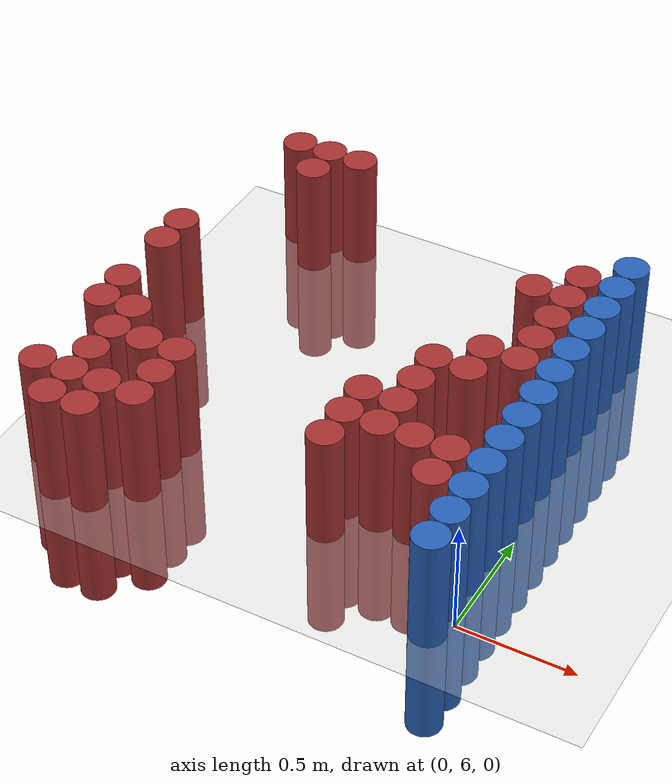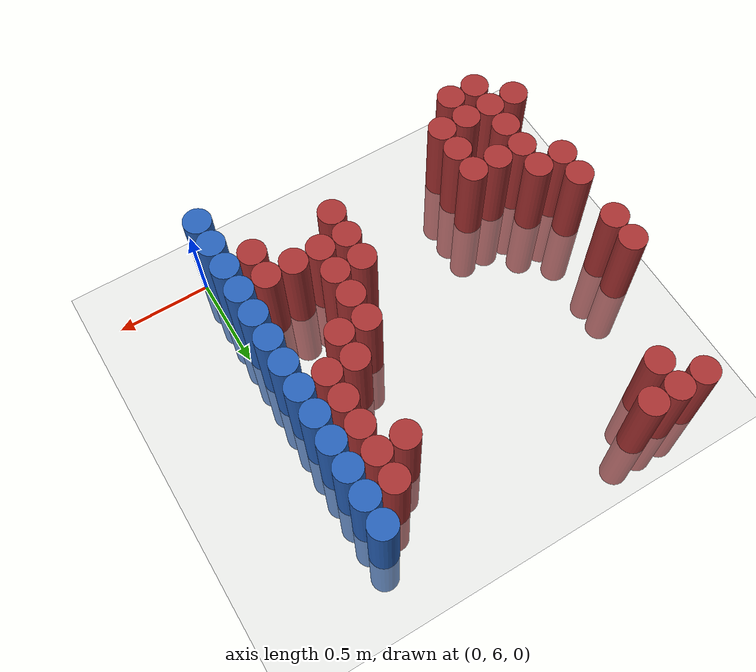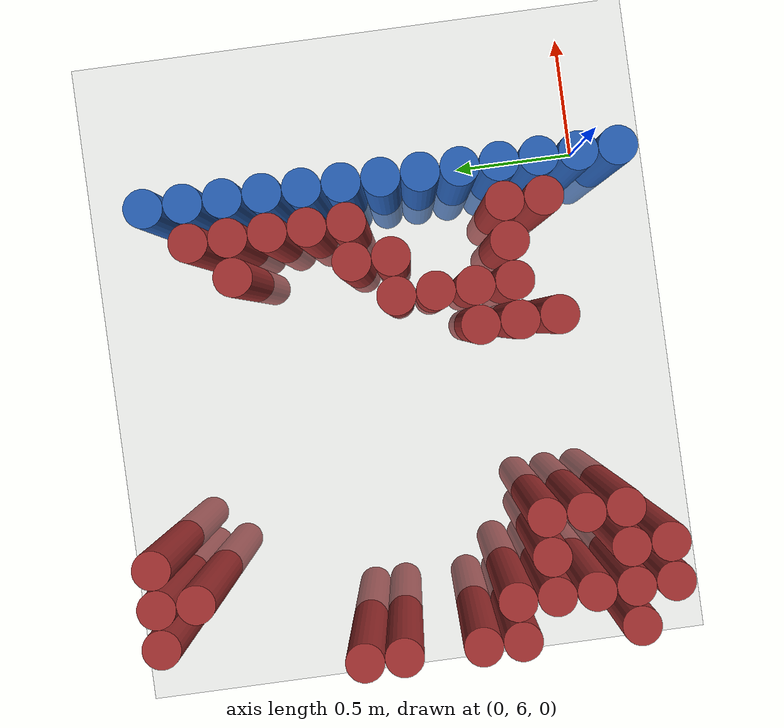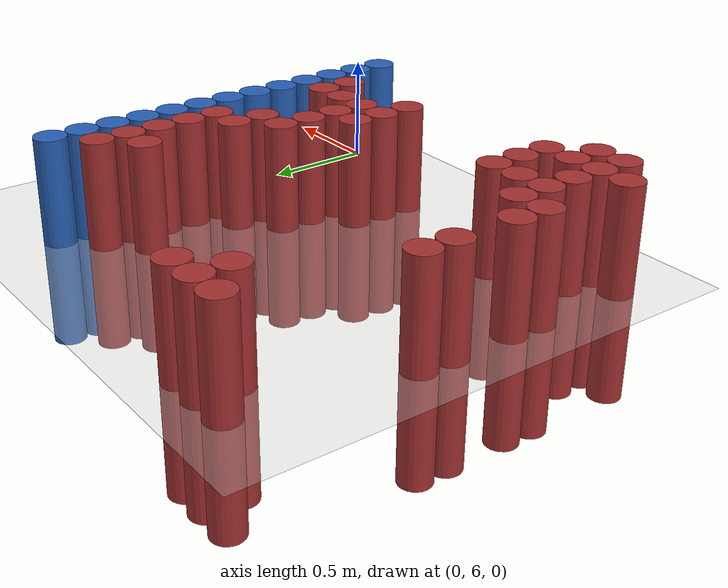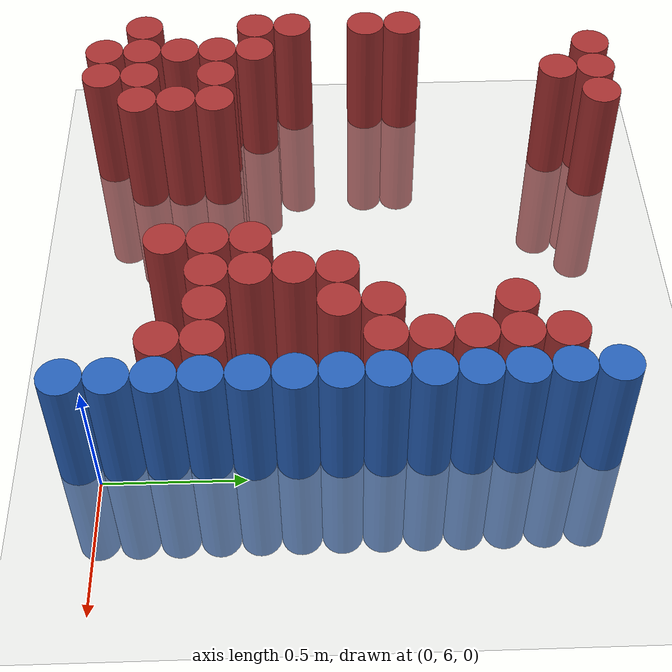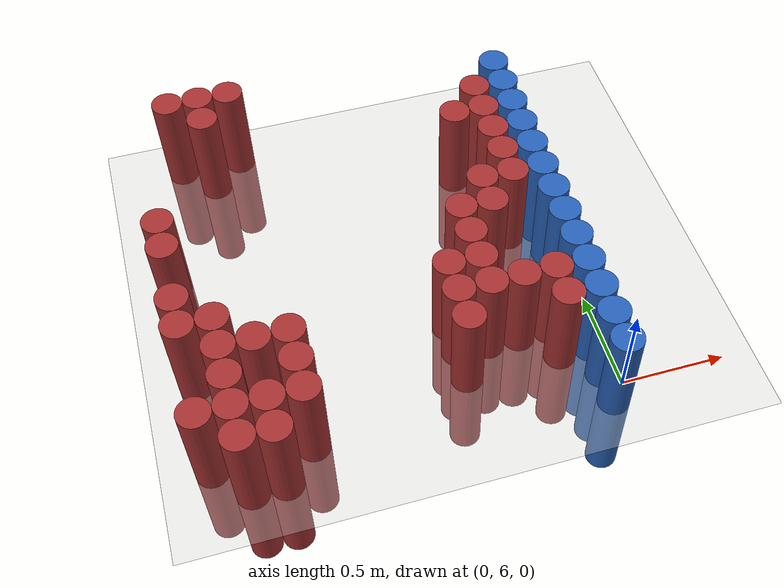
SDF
<sdf version="1.6">
 <world name="default">
  <model name="ground_plane">
   <static>1</static>
   <link name="link">
    <collision name="collision">
     <geometry><plane><normal>0 0 1</normal><size>100 100</size></plane></geometry>
     <surface><friction><ode><mu>100</mu><mu2>50</mu2></ode></friction></surface>
    </collision>
    <visual name="visual">
     <cast_shadows>0</cast_shadows>
     <geometry><plane><normal>0 0 1</normal><size>100 100</size></plane></geometry>
     <material>
      <script><uri>file://media/materials/scripts/gazebo.material</uri><name>Gazebo/Grey</name></script>
     </material>
    </visual>
   </link>
  </model>
  <model name="unit_cylinder_229">
   <static>1</static>
   <pose>-1.875000 6.075000 0.000000 0.000000 0.000000 0.000000</pose>
   <link name="link">
    <inertial>
     <mass>1</mass>
     <inertia><ixx>0.145833</ixx><ixy>0</ixy><ixz>0</ixz><iyy>0.145833</iyy><iyz>0</iyz><izz>0.125</izz></inertia>
    </inertial>
    <collision name="collision">
     <geometry><cylinder><radius>0.075000</radius><length>1</length></cylinder></geometry>
    </collision>
    <visual name="visual">
     <geometry><cylinder><radius>0.075000</radius><length>1</length></cylinder></geometry>
     <material>
      <ambient>0.648000 0.192000 0.192000 1</ambient>
      <diffuse>0.648000 0.192000 0.192000 1</diffuse>
     </material>
     <material>
      <script><name>Gazebo/Grey</name><uri>file://media/materials/scripts/gazebo.material</uri></script>
     </material>
    </visual>
   </link>
  </model>
  <model name="unit_cylinder_230">
   <static>1</static>
   <pose>-1.875000 6.525000 0.000000 0.000000 0.000000 0.000000</pose>
   <link name="link">
    <inertial>
     <mass>1</mass>
     <inertia><ixx>0.145833</ixx><ixy>0</ixy><ixz>0</ixz><iyy>0.145833</iyy><iyz>0</iyz><izz>0.125</izz></inertia>
    </inertial>
    <collision name="collision">
     <geometry><cylinder><radius>0.075000</radius><length>1</length></cylinder></geometry>
    </collision>
    <visual name="visual">
     <geometry><cylinder><radius>0.075000</radius><length>1</length></cylinder></geometry>
     <material>
      <ambient>0.648000 0.192000 0.192000 1</ambient>
      <diffuse>0.648000 0.192000 0.192000 1</diffuse>
     </material>
     <material>
      <script><name>Gazebo/Grey</name><uri>file://media/materials/scripts/gazebo.material</uri></script>
     </material>
    </visual>
   </link>
  </model>
  <model name="unit_cylinder_231">
   <static>1</static>
   <pose>-1.875000 6.675000 0.000000 0.000000 0.000000 0.000000</pose>
   <link name="link">
    <inertial>
     <mass>1</mass>
     <inertia><ixx>0.145833</ixx><ixy>0</ixy><ixz>0</ixz><iyy>0.145833</iyy><iyz>0</iyz><izz>0.125</izz></inertia>
    </inertial>
    <collision name="collision">
     <geometry><cylinder><radius>0.075000</radius><length>1</length></cylinder></geometry>
    </collision>
    <visual name="visual">
     <geometry><cylinder><radius>0.075000</radius><length>1</length></cylinder></geometry>
     <material>
      <ambient>0.648000 0.192000 0.192000 1</ambient>
      <diffuse>0.648000 0.192000 0.192000 1</diffuse>
     </material>
     <material>
      <script><name>Gazebo/Grey</name><uri>file://media/materials/scripts/gazebo.material</uri></script>
     </material>
    </visual>
   </link>
  </model>
  <model name="unit_cylinder_232">
   <static>1</static>
   <pose>-1.875000 6.975000 0.000000 0.000000 0.000000 0.000000</pose>
   <link name="link">
    <inertial>
     <mass>1</mass>
     <inertia><ixx>0.145833</ixx><ixy>0</ixy><ixz>0</ixz><iyy>0.145833</iyy><iyz>0</iyz><izz>0.125</izz></inertia>
    </inertial>
    <collision name="collision">
     <geometry><cylinder><radius>0.075000</radius><length>1</length></cylinder></geometry>
    </collision>
    <visual name="visual">
     <geometry><cylinder><radius>0.075000</radius><length>1</length></cylinder></geometry>
     <material>
      <ambient>0.648000 0.192000 0.192000 1</ambient>
      <diffuse>0.648000 0.192000 0.192000 1</diffuse>
     </material>
     <material>
      <script><name>Gazebo/Grey</name><uri>file://media/materials/scripts/gazebo.material</uri></script>
     </material>
    </visual>
   </link>
  </model>
  <model name="unit_cylinder_233">
   <static>1</static>
   <pose>-1.875000 7.125000 0.000000 0.000000 0.000000 0.000000</pose>
   <link name="link">
    <inertial>
     <mass>1</mass>
     <inertia><ixx>0.145833</ixx><ixy>0</ixy><ixz>0</ixz><iyy>0.145833</iyy><iyz>0</iyz><izz>0.125</izz></inertia>
    </inertial>
    <collision name="collision">
     <geometry><cylinder><radius>0.075000</radius><length>1</length></cylinder></geometry>
    </collision>
    <visual name="visual">
     <geometry><cylinder><radius>0.075000</radius><length>1</length></cylinder></geometry>
     <material>
      <ambient>0.648000 0.192000 0.192000 1</ambient>
      <diffuse>0.648000 0.192000 0.192000 1</diffuse>
     </material>
     <material>
      <script><name>Gazebo/Grey</name><uri>file://media/materials/scripts/gazebo.material</uri></script>
     </material>
    </visual>
   </link>
  </model>
  <model name="unit_cylinder_245">
   <static>1</static>
   <pose>-1.725000 5.925000 0.000000 0.000000 0.000000 0.000000</pose>
   <link name="link">
    <inertial>
     <mass>1</mass>
     <inertia><ixx>0.145833</ixx><ixy>0</ixy><ixz>0</ixz><iyy>0.145833</iyy><iyz>0</iyz><izz>0.125</izz></inertia>
    </inertial>
    <collision name="collision">
     <geometry><cylinder><radius>0.075000</radius><length>1</length></cylinder></geometry>
    </collision>
    <visual name="visual">
     <geometry><cylinder><radius>0.075000</radius><length>1</length></cylinder></geometry>
     <material>
      <ambient>0.648000 0.192000 0.192000 1</ambient>
      <diffuse>0.648000 0.192000 0.192000 1</diffuse>
     </material>
     <material>
      <script><name>Gazebo/Grey</name><uri>file://media/materials/scripts/gazebo.material</uri></script>
     </material>
    </visual>
   </link>
  </model>
  <model name="unit_cylinder_246">
   <static>1</static>
   <pose>-1.725000 6.075000 0.000000 0.000000 0.000000 0.000000</pose>
   <link name="link">
    <inertial>
     <mass>1</mass>
     <inertia><ixx>0.145833</ixx><ixy>0</ixy><ixz>0</ixz><iyy>0.145833</iyy><iyz>0</iyz><izz>0.125</izz></inertia>
    </inertial>
    <collision name="collision">
     <geometry><cylinder><radius>0.075000</radius><length>1</length></cylinder></geometry>
    </collision>
    <visual name="visual">
     <geometry><cylinder><radius>0.075000</radius><length>1</length></cylinder></geometry>
     <material>
      <ambient>0.648000 0.192000 0.192000 1</ambient>
      <diffuse>0.648000 0.192000 0.192000 1</diffuse>
     </material>
     <material>
      <script><name>Gazebo/Grey</name><uri>file://media/materials/scripts/gazebo.material</uri></script>
     </material>
    </visual>
   </link>
  </model>
  <model name="unit_cylinder_247">
   <static>1</static>
   <pose>-1.725000 6.225000 0.000000 0.000000 0.000000 0.000000</pose>
   <link name="link">
    <inertial>
     <mass>1</mass>
     <inertia><ixx>0.145833</ixx><ixy>0</ixy><ixz>0</ixz><iyy>0.145833</iyy><iyz>0</iyz><izz>0.125</izz></inertia>
    </inertial>
    <collision name="collision">
     <geometry><cylinder><radius>0.075000</radius><length>1</length></cylinder></geometry>
    </collision>
    <visual name="visual">
     <geometry><cylinder><radius>0.075000</radius><length>1</length></cylinder></geometry>
     <material>
      <ambient>0.648000 0.192000 0.192000 1</ambient>
      <diffuse>0.648000 0.192000 0.192000 1</diffuse>
     </material>
     <material>
      <script><name>Gazebo/Grey</name><uri>file://media/materials/scripts/gazebo.material</uri></script>
     </material>
    </visual>
   </link>
  </model>
  <model name="unit_cylinder_248">
   <static>1</static>
   <pose>-1.725000 6.375000 0.000000 0.000000 0.000000 0.000000</pose>
   <link name="link">
    <inertial>
     <mass>1</mass>
     <inertia><ixx>0.145833</ixx><ixy>0</ixy><ixz>0</ixz><iyy>0.145833</iyy><iyz>0</iyz><izz>0.125</izz></inertia>
    </inertial>
    <collision name="collision">
     <geometry><cylinder><radius>0.075000</radius><length>1</length></cylinder></geometry>
    </collision>
    <visual name="visual">
     <geometry><cylinder><radius>0.075000</radius><length>1</length></cylinder></geometry>
     <material>
      <ambient>0.648000 0.192000 0.192000 1</ambient>
      <diffuse>0.648000 0.192000 0.192000 1</diffuse>
     </material>
     <material>
      <script><name>Gazebo/Grey</name><uri>file://media/materials/scripts/gazebo.material</uri></script>
     </material>
    </visual>
   </link>
  </model>
  <model name="unit_cylinder_249">
   <static>1</static>
   <pose>-1.725000 6.525000 0.000000 0.000000 0.000000 0.000000</pose>
   <link name="link">
    <inertial>
     <mass>1</mass>
     <inertia><ixx>0.145833</ixx><ixy>0</ixy><ixz>0</ixz><iyy>0.145833</iyy><iyz>0</iyz><izz>0.125</izz></inertia>
    </inertial>
    <collision name="collision">
     <geometry><cylinder><radius>0.075000</radius><length>1</length></cylinder></geometry>
    </collision>
    <visual name="visual">
     <geometry><cylinder><radius>0.075000</radius><length>1</length></cylinder></geometry>
     <material>
      <ambient>0.648000 0.192000 0.192000 1</ambient>
      <diffuse>0.648000 0.192000 0.192000 1</diffuse>
     </material>
     <material>
      <script><name>Gazebo/Grey</name><uri>file://media/materials/scripts/gazebo.material</uri></script>
     </material>
    </visual>
   </link>
  </model>
  <model name="unit_cylinder_250">
   <static>1</static>
   <pose>-1.725000 7.875000 0.000000 0.000000 0.000000 0.000000</pose>
   <link name="link">
    <inertial>
     <mass>1</mass>
     <inertia><ixx>0.145833</ixx><ixy>0</ixy><ixz>0</ixz><iyy>0.145833</iyy><iyz>0</iyz><izz>0.125</izz></inertia>
    </inertial>
    <collision name="collision">
     <geometry><cylinder><radius>0.075000</radius><length>1</length></cylinder></geometry>
    </collision>
    <visual name="visual">
     <geometry><cylinder><radius>0.075000</radius><length>1</length></cylinder></geometry>
     <material>
      <ambient>0.648000 0.192000 0.192000 1</ambient>
      <diffuse>0.648000 0.192000 0.192000 1</diffuse>
     </material>
     <material>
      <script><name>Gazebo/Grey</name><uri>file://media/materials/scripts/gazebo.material</uri></script>
     </material>
    </visual>
   </link>
  </model>
  <model name="unit_cylinder_259">
   <static>1</static>
   <pose>-1.575000 5.925000 0.000000 0.000000 0.000000 0.000000</pose>
   <link name="link">
    <inertial>
     <mass>1</mass>
     <inertia><ixx>0.145833</ixx><ixy>0</ixy><ixz>0</ixz><iyy>0.145833</iyy><iyz>0</iyz><izz>0.125</izz></inertia>
    </inertial>
    <collision name="collision">
     <geometry><cylinder><radius>0.075000</radius><length>1</length></cylinder></geometry>
    </collision>
    <visual name="visual">
     <geometry><cylinder><radius>0.075000</radius><length>1</length></cylinder></geometry>
     <material>
      <ambient>0.648000 0.192000 0.192000 1</ambient>
      <diffuse>0.648000 0.192000 0.192000 1</diffuse>
     </material>
     <material>
      <script><name>Gazebo/Grey</name><uri>file://media/materials/scripts/gazebo.material</uri></script>
     </material>
    </visual>
   </link>
  </model>
  <model name="unit_cylinder_260">
   <static>1</static>
   <pose>-1.575000 6.075000 0.000000 0.000000 0.000000 0.000000</pose>
   <link name="link">
    <inertial>
     <mass>1</mass>
     <inertia><ixx>0.145833</ixx><ixy>0</ixy><ixz>0</ixz><iyy>0.145833</iyy><iyz>0</iyz><izz>0.125</izz></inertia>
    </inertial>
    <collision name="collision">
     <geometry><cylinder><radius>0.075000</radius><length>1</length></cylinder></geometry>
    </collision>
    <visual name="visual">
     <geometry><cylinder><radius>0.075000</radius><length>1</length></cylinder></geometry>
     <material>
      <ambient>0.648000 0.192000 0.192000 1</ambient>
      <diffuse>0.648000 0.192000 0.192000 1</diffuse>
     </material>
     <material>
      <script><name>Gazebo/Grey</name><uri>file://media/materials/scripts/gazebo.material</uri></script>
     </material>
    </visual>
   </link>
  </model>
  <model name="unit_cylinder_261">
   <static>1</static>
   <pose>-1.575000 6.375000 0.000000 0.000000 0.000000 0.000000</pose>
   <link name="link">
    <inertial>
     <mass>1</mass>
     <inertia><ixx>0.145833</ixx><ixy>0</ixy><ixz>0</ixz><iyy>0.145833</iyy><iyz>0</iyz><izz>0.125</izz></inertia>
    </inertial>
    <collision name="collision">
     <geometry><cylinder><radius>0.075000</radius><length>1</length></cylinder></geometry>
    </collision>
    <visual name="visual">
     <geometry><cylinder><radius>0.075000</radius><length>1</length></cylinder></geometry>
     <material>
      <ambient>0.648000 0.192000 0.192000 1</ambient>
      <diffuse>0.648000 0.192000 0.192000 1</diffuse>
     </material>
     <material>
      <script><name>Gazebo/Grey</name><uri>file://media/materials/scripts/gazebo.material</uri></script>
     </material>
    </visual>
   </link>
  </model>
  <model name="unit_cylinder_262">
   <static>1</static>
   <pose>-1.575000 7.725000 0.000000 0.000000 0.000000 0.000000</pose>
   <link name="link">
    <inertial>
     <mass>1</mass>
     <inertia><ixx>0.145833</ixx><ixy>0</ixy><ixz>0</ixz><iyy>0.145833</iyy><iyz>0</iyz><izz>0.125</izz></inertia>
    </inertial>
    <collision name="collision">
     <geometry><cylinder><radius>0.075000</radius><length>1</length></cylinder></geometry>
    </collision>
    <visual name="visual">
     <geometry><cylinder><radius>0.075000</radius><length>1</length></cylinder></geometry>
     <material>
      <ambient>0.648000 0.192000 0.192000 1</ambient>
      <diffuse>0.648000 0.192000 0.192000 1</diffuse>
     </material>
     <material>
      <script><name>Gazebo/Grey</name><uri>file://media/materials/scripts/gazebo.material</uri></script>
     </material>
    </visual>
   </link>
  </model>
  <model name="unit_cylinder_263">
   <static>1</static>
   <pose>-1.575000 7.875000 0.000000 0.000000 0.000000 0.000000</pose>
   <link name="link">
    <inertial>
     <mass>1</mass>
     <inertia><ixx>0.145833</ixx><ixy>0</ixy><ixz>0</ixz><iyy>0.145833</iyy><iyz>0</iyz><izz>0.125</izz></inertia>
    </inertial>
    <collision name="collision">
     <geometry><cylinder><radius>0.075000</radius><length>1</length></cylinder></geometry>
    </collision>
    <visual name="visual">
     <geometry><cylinder><radius>0.075000</radius><length>1</length></cylinder></geometry>
     <material>
      <ambient>0.648000 0.192000 0.192000 1</ambient>
      <diffuse>0.648000 0.192000 0.192000 1</diffuse>
     </material>
     <material>
      <script><name>Gazebo/Grey</name><uri>file://media/materials/scripts/gazebo.material</uri></script>
     </material>
    </visual>
   </link>
  </model>
  <model name="unit_cylinder_270">
   <static>1</static>
   <pose>-1.425000 6.075000 0.000000 0.000000 0.000000 0.000000</pose>
   <link name="link">
    <inertial>
     <mass>1</mass>
     <inertia><ixx>0.145833</ixx><ixy>0</ixy><ixz>0</ixz><iyy>0.145833</iyy><iyz>0</iyz><izz>0.125</izz></inertia>
    </inertial>
    <collision name="collision">
     <geometry><cylinder><radius>0.075000</radius><length>1</length></cylinder></geometry>
    </collision>
    <visual name="visual">
     <geometry><cylinder><radius>0.075000</radius><length>1</length></cylinder></geometry>
     <material>
      <ambient>0.648000 0.192000 0.192000 1</ambient>
      <diffuse>0.648000 0.192000 0.192000 1</diffuse>
     </material>
     <material>
      <script><name>Gazebo/Grey</name><uri>file://media/materials/scripts/gazebo.material</uri></script>
     </material>
    </visual>
   </link>
  </model>
  <model name="unit_cylinder_271">
   <static>1</static>
   <pose>-1.425000 6.225000 0.000000 0.000000 0.000000 0.000000</pose>
   <link name="link">
    <inertial>
     <mass>1</mass>
     <inertia><ixx>0.145833</ixx><ixy>0</ixy><ixz>0</ixz><iyy>0.145833</iyy><iyz>0</iyz><izz>0.125</izz></inertia>
    </inertial>
    <collision name="collision">
     <geometry><cylinder><radius>0.075000</radius><length>1</length></cylinder></geometry>
    </collision>
    <visual name="visual">
     <geometry><cylinder><radius>0.075000</radius><length>1</length></cylinder></geometry>
     <material>
      <ambient>0.648000 0.192000 0.192000 1</ambient>
      <diffuse>0.648000 0.192000 0.192000 1</diffuse>
     </material>
     <material>
      <script><name>Gazebo/Grey</name><uri>file://media/materials/scripts/gazebo.material</uri></script>
     </material>
    </visual>
   </link>
  </model>
  <model name="unit_cylinder_272">
   <static>1</static>
   <pose>-1.425000 6.375000 0.000000 0.000000 0.000000 0.000000</pose>
   <link name="link">
    <inertial>
     <mass>1</mass>
     <inertia><ixx>0.145833</ixx><ixy>0</ixy><ixz>0</ixz><iyy>0.145833</iyy><iyz>0</iyz><izz>0.125</izz></inertia>
    </inertial>
    <collision name="collision">
     <geometry><cylinder><radius>0.075000</radius><length>1</length></cylinder></geometry>
    </collision>
    <visual name="visual">
     <geometry><cylinder><radius>0.075000</radius><length>1</length></cylinder></geometry>
     <material>
      <ambient>0.648000 0.192000 0.192000 1</ambient>
      <diffuse>0.648000 0.192000 0.192000 1</diffuse>
     </material>
     <material>
      <script><name>Gazebo/Grey</name><uri>file://media/materials/scripts/gazebo.material</uri></script>
     </material>
    </visual>
   </link>
  </model>
  <model name="unit_cylinder_273">
   <static>1</static>
   <pose>-1.425000 7.875000 0.000000 0.000000 0.000000 0.000000</pose>
   <link name="link">
    <inertial>
     <mass>1</mass>
     <inertia><ixx>0.145833</ixx><ixy>0</ixy><ixz>0</ixz><iyy>0.145833</iyy><iyz>0</iyz><izz>0.125</izz></inertia>
    </inertial>
    <collision name="collision">
     <geometry><cylinder><radius>0.075000</radius><length>1</length></cylinder></geometry>
    </collision>
    <visual name="visual">
     <geometry><cylinder><radius>0.075000</radius><length>1</length></cylinder></geometry>
     <material>
      <ambient>0.648000 0.192000 0.192000 1</ambient>
      <diffuse>0.648000 0.192000 0.192000 1</diffuse>
     </material>
     <material>
      <script><name>Gazebo/Grey</name><uri>file://media/materials/scripts/gazebo.material</uri></script>
     </material>
    </visual>
   </link>
  </model>
  <model name="unit_cylinder_287">
   <static>1</static>
   <pose>-0.675000 6.225000 0.000000 0.000000 0.000000 0.000000</pose>
   <link name="link">
    <inertial>
     <mass>1</mass>
     <inertia><ixx>0.145833</ixx><ixy>0</ixy><ixz>0</ixz><iyy>0.145833</iyy><iyz>0</iyz><izz>0.125</izz></inertia>
    </inertial>
    <collision name="collision">
     <geometry><cylinder><radius>0.075000</radius><length>1</length></cylinder></geometry>
    </collision>
    <visual name="visual">
     <geometry><cylinder><radius>0.075000</radius><length>1</length></cylinder></geometry>
     <material>
      <ambient>0.648000 0.192000 0.192000 1</ambient>
      <diffuse>0.648000 0.192000 0.192000 1</diffuse>
     </material>
     <material>
      <script><name>Gazebo/Grey</name><uri>file://media/materials/scripts/gazebo.material</uri></script>
     </material>
    </visual>
   </link>
  </model>
  <model name="unit_cylinder_288">
   <static>1</static>
   <pose>-0.675000 6.375000 0.000000 0.000000 0.000000 0.000000</pose>
   <link name="link">
    <inertial>
     <mass>1</mass>
     <inertia><ixx>0.145833</ixx><ixy>0</ixy><ixz>0</ixz><iyy>0.145833</iyy><iyz>0</iyz><izz>0.125</izz></inertia>
    </inertial>
    <collision name="collision">
     <geometry><cylinder><radius>0.075000</radius><length>1</length></cylinder></geometry>
    </collision>
    <visual name="visual">
     <geometry><cylinder><radius>0.075000</radius><length>1</length></cylinder></geometry>
     <material>
      <ambient>0.648000 0.192000 0.192000 1</ambient>
      <diffuse>0.648000 0.192000 0.192000 1</diffuse>
     </material>
     <material>
      <script><name>Gazebo/Grey</name><uri>file://media/materials/scripts/gazebo.material</uri></script>
     </material>
    </visual>
   </link>
  </model>
  <model name="unit_cylinder_289">
   <static>1</static>
   <pose>-0.675000 6.525000 0.000000 0.000000 0.000000 0.000000</pose>
   <link name="link">
    <inertial>
     <mass>1</mass>
     <inertia><ixx>0.145833</ixx><ixy>0</ixy><ixz>0</ixz><iyy>0.145833</iyy><iyz>0</iyz><izz>0.125</izz></inertia>
    </inertial>
    <collision name="collision">
     <geometry><cylinder><radius>0.075000</radius><length>1</length></cylinder></geometry>
    </collision>
    <visual name="visual">
     <geometry><cylinder><radius>0.075000</radius><length>1</length></cylinder></geometry>
     <material>
      <ambient>0.648000 0.192000 0.192000 1</ambient>
      <diffuse>0.648000 0.192000 0.192000 1</diffuse>
     </material>
     <material>
      <script><name>Gazebo/Grey</name><uri>file://media/materials/scripts/gazebo.material</uri></script>
     </material>
    </visual>
   </link>
  </model>
  <model name="unit_cylinder_296">
   <static>1</static>
   <pose>-0.525000 6.375000 0.000000 0.000000 0.000000 0.000000</pose>
   <link name="link">
    <inertial>
     <mass>1</mass>
     <inertia><ixx>0.145833</ixx><ixy>0</ixy><ixz>0</ixz><iyy>0.145833</iyy><iyz>0</iyz><izz>0.125</izz></inertia>
    </inertial>
    <collision name="collision">
     <geometry><cylinder><radius>0.075000</radius><length>1</length></cylinder></geometry>
    </collision>
    <visual name="visual">
     <geometry><cylinder><radius>0.075000</radius><length>1</length></cylinder></geometry>
     <material>
      <ambient>0.648000 0.192000 0.192000 1</ambient>
      <diffuse>0.648000 0.192000 0.192000 1</diffuse>
     </material>
     <material>
      <script><name>Gazebo/Grey</name><uri>file://media/materials/scripts/gazebo.material</uri></script>
     </material>
    </visual>
   </link>
  </model>
  <model name="unit_cylinder_297">
   <static>1</static>
   <pose>-0.525000 6.525000 0.000000 0.000000 0.000000 0.000000</pose>
   <link name="link">
    <inertial>
     <mass>1</mass>
     <inertia><ixx>0.145833</ixx><ixy>0</ixy><ixz>0</ixz><iyy>0.145833</iyy><iyz>0</iyz><izz>0.125</izz></inertia>
    </inertial>
    <collision name="collision">
     <geometry><cylinder><radius>0.075000</radius><length>1</length></cylinder></geometry>
    </collision>
    <visual name="visual">
     <geometry><cylinder><radius>0.075000</radius><length>1</length></cylinder></geometry>
     <material>
      <ambient>0.648000 0.192000 0.192000 1</ambient>
      <diffuse>0.648000 0.192000 0.192000 1</diffuse>
     </material>
     <material>
      <script><name>Gazebo/Grey</name><uri>file://media/materials/scripts/gazebo.material</uri></script>
     </material>
    </visual>
   </link>
  </model>
  <model name="unit_cylinder_298">
   <static>1</static>
   <pose>-0.525000 6.675000 0.000000 0.000000 0.000000 0.000000</pose>
   <link name="link">
    <inertial>
     <mass>1</mass>
     <inertia><ixx>0.145833</ixx><ixy>0</ixy><ixz>0</ixz><iyy>0.145833</iyy><iyz>0</iyz><izz>0.125</izz></inertia>
    </inertial>
    <collision name="collision">
     <geometry><cylinder><radius>0.075000</radius><length>1</length></cylinder></geometry>
    </collision>
    <visual name="visual">
     <geometry><cylinder><radius>0.075000</radius><length>1</length></cylinder></geometry>
     <material>
      <ambient>0.648000 0.192000 0.192000 1</ambient>
      <diffuse>0.648000 0.192000 0.192000 1</diffuse>
     </material>
     <material>
      <script><name>Gazebo/Grey</name><uri>file://media/materials/scripts/gazebo.material</uri></script>
     </material>
    </visual>
   </link>
  </model>
  <model name="unit_cylinder_299">
   <static>1</static>
   <pose>-0.525000 6.825000 0.000000 0.000000 0.000000 0.000000</pose>
   <link name="link">
    <inertial>
     <mass>1</mass>
     <inertia><ixx>0.145833</ixx><ixy>0</ixy><ixz>0</ixz><iyy>0.145833</iyy><iyz>0</iyz><izz>0.125</izz></inertia>
    </inertial>
    <collision name="collision">
     <geometry><cylinder><radius>0.075000</radius><length>1</length></cylinder></geometry>
    </collision>
    <visual name="visual">
     <geometry><cylinder><radius>0.075000</radius><length>1</length></cylinder></geometry>
     <material>
      <ambient>0.648000 0.192000 0.192000 1</ambient>
      <diffuse>0.648000 0.192000 0.192000 1</diffuse>
     </material>
     <material>
      <script><name>Gazebo/Grey</name><uri>file://media/materials/scripts/gazebo.material</uri></script>
     </material>
    </visual>
   </link>
  </model>
  <model name="unit_cylinder_308">
   <static>1</static>
   <pose>-0.375000 6.375000 0.000000 0.000000 0.000000 0.000000</pose>
   <link name="link">
    <inertial>
     <mass>1</mass>
     <inertia><ixx>0.145833</ixx><ixy>0</ixy><ixz>0</ixz><iyy>0.145833</iyy><iyz>0</iyz><izz>0.125</izz></inertia>
    </inertial>
    <collision name="collision">
     <geometry><cylinder><radius>0.075000</radius><length>1</length></cylinder></geometry>
    </collision>
    <visual name="visual">
     <geometry><cylinder><radius>0.075000</radius><length>1</length></cylinder></geometry>
     <material>
      <ambient>0.648000 0.192000 0.192000 1</ambient>
      <diffuse>0.648000 0.192000 0.192000 1</diffuse>
     </material>
     <material>
      <script><name>Gazebo/Grey</name><uri>file://media/materials/scripts/gazebo.material</uri></script>
     </material>
    </visual>
   </link>
  </model>
  <model name="unit_cylinder_309">
   <static>1</static>
   <pose>-0.375000 6.825000 0.000000 0.000000 0.000000 0.000000</pose>
   <link name="link">
    <inertial>
     <mass>1</mass>
     <inertia><ixx>0.145833</ixx><ixy>0</ixy><ixz>0</ixz><iyy>0.145833</iyy><iyz>0</iyz><izz>0.125</izz></inertia>
    </inertial>
    <collision name="collision">
     <geometry><cylinder><radius>0.075000</radius><length>1</length></cylinder></geometry>
    </collision>
    <visual name="visual">
     <geometry><cylinder><radius>0.075000</radius><length>1</length></cylinder></geometry>
     <material>
      <ambient>0.648000 0.192000 0.192000 1</ambient>
      <diffuse>0.648000 0.192000 0.192000 1</diffuse>
     </material>
     <material>
      <script><name>Gazebo/Grey</name><uri>file://media/materials/scripts/gazebo.material</uri></script>
     </material>
    </visual>
   </link>
  </model>
  <model name="unit_cylinder_310">
   <static>1</static>
   <pose>-0.375000 6.975000 0.000000 0.000000 0.000000 0.000000</pose>
   <link name="link">
    <inertial>
     <mass>1</mass>
     <inertia><ixx>0.145833</ixx><ixy>0</ixy><ixz>0</ixz><iyy>0.145833</iyy><iyz>0</iyz><izz>0.125</izz></inertia>
    </inertial>
    <collision name="collision">
     <geometry><cylinder><radius>0.075000</radius><length>1</length></cylinder></geometry>
    </collision>
    <visual name="visual">
     <geometry><cylinder><radius>0.075000</radius><length>1</length></cylinder></geometry>
     <material>
      <ambient>0.648000 0.192000 0.192000 1</ambient>
      <diffuse>0.648000 0.192000 0.192000 1</diffuse>
     </material>
     <material>
      <script><name>Gazebo/Grey</name><uri>file://media/materials/scripts/gazebo.material</uri></script>
     </material>
    </visual>
   </link>
  </model>
  <model name="unit_cylinder_311">
   <static>1</static>
   <pose>-0.375000 7.425000 0.000000 0.000000 0.000000 0.000000</pose>
   <link name="link">
    <inertial>
     <mass>1</mass>
     <inertia><ixx>0.145833</ixx><ixy>0</ixy><ixz>0</ixz><iyy>0.145833</iyy><iyz>0</iyz><izz>0.125</izz></inertia>
    </inertial>
    <collision name="collision">
     <geometry><cylinder><radius>0.075000</radius><length>1</length></cylinder></geometry>
    </collision>
    <visual name="visual">
     <geometry><cylinder><radius>0.075000</radius><length>1</length></cylinder></geometry>
     <material>
      <ambient>0.648000 0.192000 0.192000 1</ambient>
      <diffuse>0.648000 0.192000 0.192000 1</diffuse>
     </material>
     <material>
      <script><name>Gazebo/Grey</name><uri>file://media/materials/scripts/gazebo.material</uri></script>
     </material>
    </visual>
   </link>
  </model>
  <model name="unit_cylinder_318">
   <static>1</static>
   <pose>-0.225000 6.225000 0.000000 0.000000 0.000000 0.000000</pose>
   <link name="link">
    <inertial>
     <mass>1</mass>
     <inertia><ixx>0.145833</ixx><ixy>0</ixy><ixz>0</ixz><iyy>0.145833</iyy><iyz>0</iyz><izz>0.125</izz></inertia>
    </inertial>
    <collision name="collision">
     <geometry><cylinder><radius>0.075000</radius><length>1</length></cylinder></geometry>
    </collision>
    <visual name="visual">
     <geometry><cylinder><radius>0.075000</radius><length>1</length></cylinder></geometry>
     <material>
      <ambient>0.648000 0.192000 0.192000 1</ambient>
      <diffuse>0.648000 0.192000 0.192000 1</diffuse>
     </material>
     <material>
      <script><name>Gazebo/Grey</name><uri>file://media/materials/scripts/gazebo.material</uri></script>
     </material>
    </visual>
   </link>
  </model>
  <model name="unit_cylinder_319">
   <static>1</static>
   <pose>-0.225000 6.375000 0.000000 0.000000 0.000000 0.000000</pose>
   <link name="link">
    <inertial>
     <mass>1</mass>
     <inertia><ixx>0.145833</ixx><ixy>0</ixy><ixz>0</ixz><iyy>0.145833</iyy><iyz>0</iyz><izz>0.125</izz></inertia>
    </inertial>
    <collision name="collision">
     <geometry><cylinder><radius>0.075000</radius><length>1</length></cylinder></geometry>
    </collision>
    <visual name="visual">
     <geometry><cylinder><radius>0.075000</radius><length>1</length></cylinder></geometry>
     <material>
      <ambient>0.648000 0.192000 0.192000 1</ambient>
      <diffuse>0.648000 0.192000 0.192000 1</diffuse>
     </material>
     <material>
      <script><name>Gazebo/Grey</name><uri>file://media/materials/scripts/gazebo.material</uri></script>
     </material>
    </visual>
   </link>
  </model>
  <model name="unit_cylinder_320">
   <static>1</static>
   <pose>-0.225000 6.975000 0.000000 0.000000 0.000000 0.000000</pose>
   <link name="link">
    <inertial>
     <mass>1</mass>
     <inertia><ixx>0.145833</ixx><ixy>0</ixy><ixz>0</ixz><iyy>0.145833</iyy><iyz>0</iyz><izz>0.125</izz></inertia>
    </inertial>
    <collision name="collision">
     <geometry><cylinder><radius>0.075000</radius><length>1</length></cylinder></geometry>
    </collision>
    <visual name="visual">
     <geometry><cylinder><radius>0.075000</radius><length>1</length></cylinder></geometry>
     <material>
      <ambient>0.648000 0.192000 0.192000 1</ambient>
      <diffuse>0.648000 0.192000 0.192000 1</diffuse>
     </material>
     <material>
      <script><name>Gazebo/Grey</name><uri>file://media/materials/scripts/gazebo.material</uri></script>
     </material>
    </visual>
   </link>
  </model>
  <model name="unit_cylinder_321">
   <static>1</static>
   <pose>-0.225000 7.125000 0.000000 0.000000 0.000000 0.000000</pose>
   <link name="link">
    <inertial>
     <mass>1</mass>
     <inertia><ixx>0.145833</ixx><ixy>0</ixy><ixz>0</ixz><iyy>0.145833</iyy><iyz>0</iyz><izz>0.125</izz></inertia>
    </inertial>
    <collision name="collision">
     <geometry><cylinder><radius>0.075000</radius><length>1</length></cylinder></geometry>
    </collision>
    <visual name="visual">
     <geometry><cylinder><radius>0.075000</radius><length>1</length></cylinder></geometry>
     <material>
      <ambient>0.648000 0.192000 0.192000 1</ambient>
      <diffuse>0.648000 0.192000 0.192000 1</diffuse>
     </material>
     <material>
      <script><name>Gazebo/Grey</name><uri>file://media/materials/scripts/gazebo.material</uri></script>
     </material>
    </visual>
   </link>
  </model>
  <model name="unit_cylinder_322">
   <static>1</static>
   <pose>-0.225000 7.275000 0.000000 0.000000 0.000000 0.000000</pose>
   <link name="link">
    <inertial>
     <mass>1</mass>
     <inertia><ixx>0.145833</ixx><ixy>0</ixy><ixz>0</ixz><iyy>0.145833</iyy><iyz>0</iyz><izz>0.125</izz></inertia>
    </inertial>
    <collision name="collision">
     <geometry><cylinder><radius>0.075000</radius><length>1</length></cylinder></geometry>
    </collision>
    <visual name="visual">
     <geometry><cylinder><radius>0.075000</radius><length>1</length></cylinder></geometry>
     <material>
      <ambient>0.648000 0.192000 0.192000 1</ambient>
      <diffuse>0.648000 0.192000 0.192000 1</diffuse>
     </material>
     <material>
      <script><name>Gazebo/Grey</name><uri>file://media/materials/scripts/gazebo.material</uri></script>
     </material>
    </visual>
   </link>
  </model>
  <model name="unit_cylinder_323">
   <static>1</static>
   <pose>-0.225000 7.425000 0.000000 0.000000 0.000000 0.000000</pose>
   <link name="link">
    <inertial>
     <mass>1</mass>
     <inertia><ixx>0.145833</ixx><ixy>0</ixy><ixz>0</ixz><iyy>0.145833</iyy><iyz>0</iyz><izz>0.125</izz></inertia>
    </inertial>
    <collision name="collision">
     <geometry><cylinder><radius>0.075000</radius><length>1</length></cylinder></geometry>
    </collision>
    <visual name="visual">
     <geometry><cylinder><radius>0.075000</radius><length>1</length></cylinder></geometry>
     <material>
      <ambient>0.648000 0.192000 0.192000 1</ambient>
      <diffuse>0.648000 0.192000 0.192000 1</diffuse>
     </material>
     <material>
      <script><name>Gazebo/Grey</name><uri>file://media/materials/scripts/gazebo.material</uri></script>
     </material>
    </visual>
   </link>
  </model>
  <model name="unit_cylinder_324">
   <static>1</static>
   <pose>-0.225000 7.575000 0.000000 0.000000 0.000000 0.000000</pose>
   <link name="link">
    <inertial>
     <mass>1</mass>
     <inertia><ixx>0.145833</ixx><ixy>0</ixy><ixz>0</ixz><iyy>0.145833</iyy><iyz>0</iyz><izz>0.125</izz></inertia>
    </inertial>
    <collision name="collision">
     <geometry><cylinder><radius>0.075000</radius><length>1</length></cylinder></geometry>
    </collision>
    <visual name="visual">
     <geometry><cylinder><radius>0.075000</radius><length>1</length></cylinder></geometry>
     <material>
      <ambient>0.648000 0.192000 0.192000 1</ambient>
      <diffuse>0.648000 0.192000 0.192000 1</diffuse>
     </material>
     <material>
      <script><name>Gazebo/Grey</name><uri>file://media/materials/scripts/gazebo.material</uri></script>
     </material>
    </visual>
   </link>
  </model>
  <model name="unit_cylinder_334">
   <static>1</static>
   <pose>-0.075000 5.925000 0.000000 0.000000 0.000000 0.000000</pose>
   <link name="link">
    <inertial>
     <mass>1</mass>
     <inertia><ixx>0.145833</ixx><ixy>0</ixy><ixz>0</ixz><iyy>0.145833</iyy><iyz>0</iyz><izz>0.125</izz></inertia>
    </inertial>
    <collision name="collision">
     <geometry><cylinder><radius>0.075000</radius><length>1</length></cylinder></geometry>
    </collision>
    <visual name="visual">
     <geometry><cylinder><radius>0.075000</radius><length>1</length></cylinder></geometry>
     <material>
      <ambient>0.152000 0.379000 0.720000 1</ambient>
      <diffuse>0.152000 0.379000 0.720000 1</diffuse>
     </material>
     <material>
      <script><name>Gazebo/Grey</name><uri>file://media/materials/scripts/gazebo.material</uri></script>
     </material>
    </visual>
   </link>
  </model>
  <model name="unit_cylinder_335">
   <static>1</static>
   <pose>-0.075000 6.075000 0.000000 0.000000 0.000000 0.000000</pose>
   <link name="link">
    <inertial>
     <mass>1</mass>
     <inertia><ixx>0.145833</ixx><ixy>0</ixy><ixz>0</ixz><iyy>0.145833</iyy><iyz>0</iyz><izz>0.125</izz></inertia>
    </inertial>
    <collision name="collision">
     <geometry><cylinder><radius>0.075000</radius><length>1</length></cylinder></geometry>
    </collision>
    <visual name="visual">
     <geometry><cylinder><radius>0.075000</radius><length>1</length></cylinder></geometry>
     <material>
      <ambient>0.152000 0.379000 0.720000 1</ambient>
      <diffuse>0.152000 0.379000 0.720000 1</diffuse>
     </material>
     <material>
      <script><name>Gazebo/Grey</name><uri>file://media/materials/scripts/gazebo.material</uri></script>
     </material>
    </visual>
   </link>
  </model>
  <model name="unit_cylinder_336">
   <static>1</static>
   <pose>-0.075000 6.225000 0.000000 0.000000 0.000000 0.000000</pose>
   <link name="link">
    <inertial>
     <mass>1</mass>
     <inertia><ixx>0.145833</ixx><ixy>0</ixy><ixz>0</ixz><iyy>0.145833</iyy><iyz>0</iyz><izz>0.125</izz></inertia>
    </inertial>
    <collision name="collision">
     <geometry><cylinder><radius>0.075000</radius><length>1</length></cylinder></geometry>
    </collision>
    <visual name="visual">
     <geometry><cylinder><radius>0.075000</radius><length>1</length></cylinder></geometry>
     <material>
      <ambient>0.152000 0.379000 0.720000 1</ambient>
      <diffuse>0.152000 0.379000 0.720000 1</diffuse>
     </material>
     <material>
      <script><name>Gazebo/Grey</name><uri>file://media/materials/scripts/gazebo.material</uri></script>
     </material>
    </visual>
   </link>
  </model>
  <model name="unit_cylinder_337">
   <static>1</static>
   <pose>-0.075000 6.375000 0.000000 0.000000 0.000000 0.000000</pose>
   <link name="link">
    <inertial>
     <mass>1</mass>
     <inertia><ixx>0.145833</ixx><ixy>0</ixy><ixz>0</ixz><iyy>0.145833</iyy><iyz>0</iyz><izz>0.125</izz></inertia>
    </inertial>
    <collision name="collision">
     <geometry><cylinder><radius>0.075000</radius><length>1</length></cylinder></geometry>
    </collision>
    <visual name="visual">
     <geometry><cylinder><radius>0.075000</radius><length>1</length></cylinder></geometry>
     <material>
      <ambient>0.152000 0.379000 0.720000 1</ambient>
      <diffuse>0.152000 0.379000 0.720000 1</diffuse>
     </material>
     <material>
      <script><name>Gazebo/Grey</name><uri>file://media/materials/scripts/gazebo.material</uri></script>
     </material>
    </visual>
   </link>
  </model>
  <model name="unit_cylinder_338">
   <static>1</static>
   <pose>-0.075000 6.525000 0.000000 0.000000 0.000000 0.000000</pose>
   <link name="link">
    <inertial>
     <mass>1</mass>
     <inertia><ixx>0.145833</ixx><ixy>0</ixy><ixz>0</ixz><iyy>0.145833</iyy><iyz>0</iyz><izz>0.125</izz></inertia>
    </inertial>
    <collision name="collision">
     <geometry><cylinder><radius>0.075000</radius><length>1</length></cylinder></geometry>
    </collision>
    <visual name="visual">
     <geometry><cylinder><radius>0.075000</radius><length>1</length></cylinder></geometry>
     <material>
      <ambient>0.152000 0.379000 0.720000 1</ambient>
      <diffuse>0.152000 0.379000 0.720000 1</diffuse>
     </material>
     <material>
      <script><name>Gazebo/Grey</name><uri>file://media/materials/scripts/gazebo.material</uri></script>
     </material>
    </visual>
   </link>
  </model>
  <model name="unit_cylinder_339">
   <static>1</static>
   <pose>-0.075000 6.675000 0.000000 0.000000 0.000000 0.000000</pose>
   <link name="link">
    <inertial>
     <mass>1</mass>
     <inertia><ixx>0.145833</ixx><ixy>0</ixy><ixz>0</ixz><iyy>0.145833</iyy><iyz>0</iyz><izz>0.125</izz></inertia>
    </inertial>
    <collision name="collision">
     <geometry><cylinder><radius>0.075000</radius><length>1</length></cylinder></geometry>
    </collision>
    <visual name="visual">
     <geometry><cylinder><radius>0.075000</radius><length>1</length></cylinder></geometry>
     <material>
      <ambient>0.152000 0.379000 0.720000 1</ambient>
      <diffuse>0.152000 0.379000 0.720000 1</diffuse>
     </material>
     <material>
      <script><name>Gazebo/Grey</name><uri>file://media/materials/scripts/gazebo.material</uri></script>
     </material>
    </visual>
   </link>
  </model>
  <model name="unit_cylinder_340">
   <static>1</static>
   <pose>-0.075000 6.825000 0.000000 0.000000 0.000000 0.000000</pose>
   <link name="link">
    <inertial>
     <mass>1</mass>
     <inertia><ixx>0.145833</ixx><ixy>0</ixy><ixz>0</ixz><iyy>0.145833</iyy><iyz>0</iyz><izz>0.125</izz></inertia>
    </inertial>
    <collision name="collision">
     <geometry><cylinder><radius>0.075000</radius><length>1</length></cylinder></geometry>
    </collision>
    <visual name="visual">
     <geometry><cylinder><radius>0.075000</radius><length>1</length></cylinder></geometry>
     <material>
      <ambient>0.152000 0.379000 0.720000 1</ambient>
      <diffuse>0.152000 0.379000 0.720000 1</diffuse>
     </material>
     <material>
      <script><name>Gazebo/Grey</name><uri>file://media/materials/scripts/gazebo.material</uri></script>
     </material>
    </visual>
   </link>
  </model>
  <model name="unit_cylinder_341">
   <static>1</static>
   <pose>-0.075000 6.975000 0.000000 0.000000 0.000000 0.000000</pose>
   <link name="link">
    <inertial>
     <mass>1</mass>
     <inertia><ixx>0.145833</ixx><ixy>0</ixy><ixz>0</ixz><iyy>0.145833</iyy><iyz>0</iyz><izz>0.125</izz></inertia>
    </inertial>
    <collision name="collision">
     <geometry><cylinder><radius>0.075000</radius><length>1</length></cylinder></geometry>
    </collision>
    <visual name="visual">
     <geometry><cylinder><radius>0.075000</radius><length>1</length></cylinder></geometry>
     <material>
      <ambient>0.152000 0.379000 0.720000 1</ambient>
      <diffuse>0.152000 0.379000 0.720000 1</diffuse>
     </material>
     <material>
      <script><name>Gazebo/Grey</name><uri>file://media/materials/scripts/gazebo.material</uri></script>
     </material>
    </visual>
   </link>
  </model>
  <model name="unit_cylinder_342">
   <static>1</static>
   <pose>-0.075000 7.125000 0.000000 0.000000 0.000000 0.000000</pose>
   <link name="link">
    <inertial>
     <mass>1</mass>
     <inertia><ixx>0.145833</ixx><ixy>0</ixy><ixz>0</ixz><iyy>0.145833</iyy><iyz>0</iyz><izz>0.125</izz></inertia>
    </inertial>
    <collision name="collision">
     <geometry><cylinder><radius>0.075000</radius><length>1</length></cylinder></geometry>
    </collision>
    <visual name="visual">
     <geometry><cylinder><radius>0.075000</radius><length>1</length></cylinder></geometry>
     <material>
      <ambient>0.152000 0.379000 0.720000 1</ambient>
      <diffuse>0.152000 0.379000 0.720000 1</diffuse>
     </material>
     <material>
      <script><name>Gazebo/Grey</name><uri>file://media/materials/scripts/gazebo.material</uri></script>
     </material>
    </visual>
   </link>
  </model>
  <model name="unit_cylinder_343">
   <static>1</static>
   <pose>-0.075000 7.275000 0.000000 0.000000 0.000000 0.000000</pose>
   <link name="link">
    <inertial>
     <mass>1</mass>
     <inertia><ixx>0.145833</ixx><ixy>0</ixy><ixz>0</ixz><iyy>0.145833</iyy><iyz>0</iyz><izz>0.125</izz></inertia>
    </inertial>
    <collision name="collision">
     <geometry><cylinder><radius>0.075000</radius><length>1</length></cylinder></geometry>
    </collision>
    <visual name="visual">
     <geometry><cylinder><radius>0.075000</radius><length>1</length></cylinder></geometry>
     <material>
      <ambient>0.152000 0.379000 0.720000 1</ambient>
      <diffuse>0.152000 0.379000 0.720000 1</diffuse>
     </material>
     <material>
      <script><name>Gazebo/Grey</name><uri>file://media/materials/scripts/gazebo.material</uri></script>
     </material>
    </visual>
   </link>
  </model>
  <model name="unit_cylinder_344">
   <static>1</static>
   <pose>-0.075000 7.425000 0.000000 0.000000 0.000000 0.000000</pose>
   <link name="link">
    <inertial>
     <mass>1</mass>
     <inertia><ixx>0.145833</ixx><ixy>0</ixy><ixz>0</ixz><iyy>0.145833</iyy><iyz>0</iyz><izz>0.125</izz></inertia>
    </inertial>
    <collision name="collision">
     <geometry><cylinder><radius>0.075000</radius><length>1</length></cylinder></geometry>
    </collision>
    <visual name="visual">
     <geometry><cylinder><radius>0.075000</radius><length>1</length></cylinder></geometry>
     <material>
      <ambient>0.152000 0.379000 0.720000 1</ambient>
      <diffuse>0.152000 0.379000 0.720000 1</diffuse>
     </material>
     <material>
      <script><name>Gazebo/Grey</name><uri>file://media/materials/scripts/gazebo.material</uri></script>
     </material>
    </visual>
   </link>
  </model>
  <model name="unit_cylinder_345">
   <static>1</static>
   <pose>-0.075000 7.575000 0.000000 0.000000 0.000000 0.000000</pose>
   <link name="link">
    <inertial>
     <mass>1</mass>
     <inertia><ixx>0.145833</ixx><ixy>0</ixy><ixz>0</ixz><iyy>0.145833</iyy><iyz>0</iyz><izz>0.125</izz></inertia>
    </inertial>
    <collision name="collision">
     <geometry><cylinder><radius>0.075000</radius><length>1</length></cylinder></geometry>
    </collision>
    <visual name="visual">
     <geometry><cylinder><radius>0.075000</radius><length>1</length></cylinder></geometry>
     <material>
      <ambient>0.152000 0.379000 0.720000 1</ambient>
      <diffuse>0.152000 0.379000 0.720000 1</diffuse>
     </material>
     <material>
      <script><name>Gazebo/Grey</name><uri>file://media/materials/scripts/gazebo.material</uri></script>
     </material>
    </visual>
   </link>
  </model>
  <model name="unit_cylinder_346">
   <static>1</static>
   <pose>-0.075000 7.725000 0.000000 0.000000 0.000000 0.000000</pose>
   <link name="link">
    <inertial>
     <mass>1</mass>
     <inertia><ixx>0.145833</ixx><ixy>0</ixy><ixz>0</ixz><iyy>0.145833</iyy><iyz>0</iyz><izz>0.125</izz></inertia>
    </inertial>
    <collision name="collision">
     <geometry><cylinder><radius>0.075000</radius><length>1</length></cylinder></geometry>
    </collision>
    <visual name="visual">
     <geometry><cylinder><radius>0.075000</radius><length>1</length></cylinder></geometry>
     <material>
      <ambient>0.152000 0.379000 0.720000 1</ambient>
      <diffuse>0.152000 0.379000 0.720000 1</diffuse>
     </material>
     <material>
      <script><name>Gazebo/Grey</name><uri>file://media/materials/scripts/gazebo.material</uri></script>
     </material>
    </visual>
   </link>
  </model>
 </world>
</sdf>
